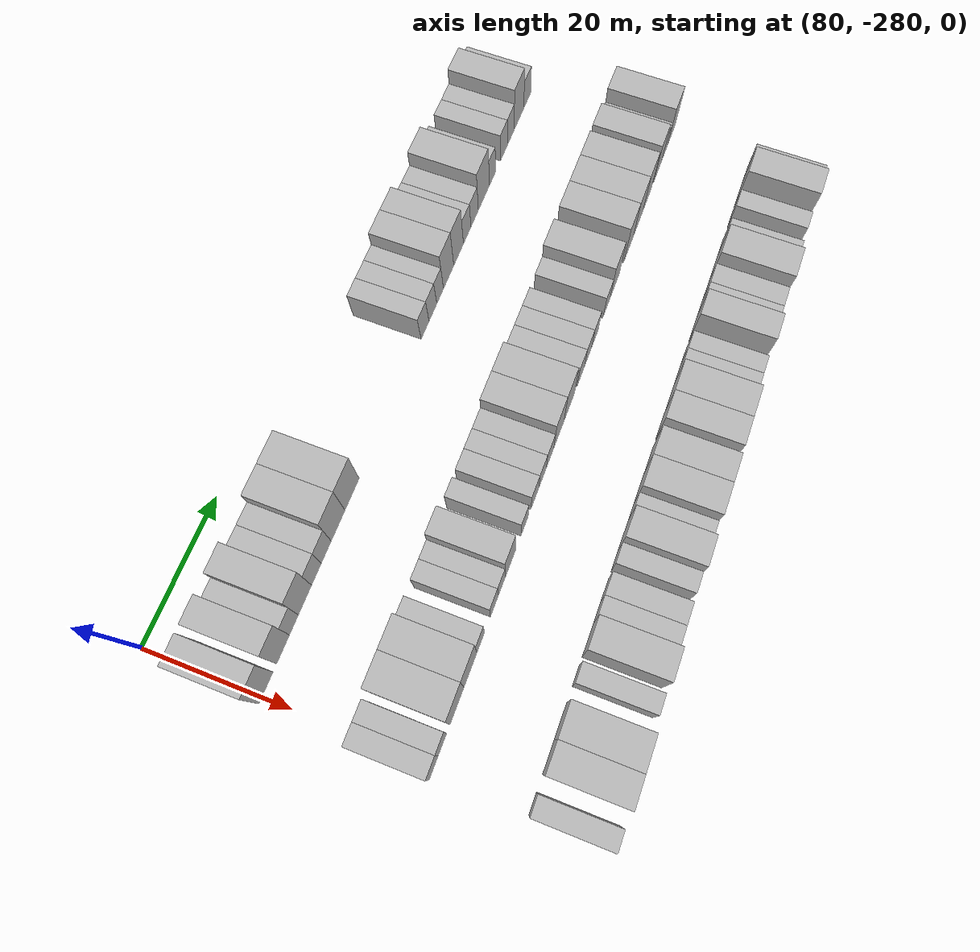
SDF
<sdf version="1.6">
 <world name="default">
  <model name="building_590">
   <static>1</static>
   <pose>91.0000 -278.8587 0 0.000000 0.000000 0.000000</pose>
   <link name="link">
    <pose>0 0 4.50 0 0 0</pose>
    <collision name="collision"><geometry><box><size>10.0000 3.8773 9.0000</size></box></geometry></collision>
    <visual name="visual">
     <cast_shadows>0</cast_shadows>
     <geometry><box><size>10.0000 3.8773 9.0000</size></box></geometry>
     <material>
      <script>
       <uri>model://HANNAS_wall/materials/scripts</uri>
       <uri>model://HANNAS_wall/materials/textures</uri>
       <name>vrc/HANNAS_wall</name>
      </script>
     </material>
    </visual>
   </link>
  </model>
  <model name="building_591">
   <static>1</static>
   <pose>91.0000 -274.1182 0 0.000000 0.000000 0.000000</pose>
   <link name="link">
    <pose>0 0 4.50 0 0 0</pose>
    <collision name="collision"><geometry><box><size>10.0000 3.6036 9.0000</size></box></geometry></collision>
    <visual name="visual">
     <cast_shadows>0</cast_shadows>
     <geometry><box><size>10.0000 3.6036 9.0000</size></box></geometry>
     <material>
      <script>
       <uri>model://HANNAS_wall/materials/scripts</uri>
       <uri>model://HANNAS_wall/materials/textures</uri>
       <name>vrc/HANNAS_wall</name>
      </script>
     </material>
    </visual>
   </link>
  </model>
  <model name="building_592">
   <static>1</static>
   <pose>91.0000 -271.0439 0 0.000000 0.000000 0.000000</pose>
   <link name="link">
    <pose>0 0 3.00 0 0 0</pose>
    <collision name="collision"><geometry><box><size>10.0000 2.5450 6.0000</size></box></geometry></collision>
    <visual name="visual">
     <cast_shadows>0</cast_shadows>
     <geometry><box><size>10.0000 2.5450 6.0000</size></box></geometry>
     <material>
      <script>
       <uri>model://HANNAS_wall/materials/scripts</uri>
       <uri>model://HANNAS_wall/materials/textures</uri>
       <name>vrc/HANNAS_wall</name>
      </script>
     </material>
    </visual>
   </link>
  </model>
  <model name="building_593">
   <static>1</static>
   <pose>91.0000 -267.8481 0 0.000000 0.000000 0.000000</pose>
   <link name="link">
    <pose>0 0 4.50 0 0 0</pose>
    <collision name="collision"><geometry><box><size>10.0000 3.8466 9.0000</size></box></geometry></collision>
    <visual name="visual">
     <cast_shadows>0</cast_shadows>
     <geometry><box><size>10.0000 3.8466 9.0000</size></box></geometry>
     <material>
      <script>
       <uri>model://HANNAS_wall/materials/scripts</uri>
       <uri>model://HANNAS_wall/materials/textures</uri>
       <name>vrc/HANNAS_wall</name>
      </script>
     </material>
    </visual>
   </link>
  </model>
  <model name="building_594">
   <static>1</static>
   <pose>91.0000 -264.4795 0 0.000000 0.000000 0.000000</pose>
   <link name="link">
    <pose>0 0 3.00 0 0 0</pose>
    <collision name="collision"><geometry><box><size>10.0000 2.8905 6.0000</size></box></geometry></collision>
    <visual name="visual">
     <cast_shadows>0</cast_shadows>
     <geometry><box><size>10.0000 2.8905 6.0000</size></box></geometry>
     <material>
      <script>
       <uri>model://HANNAS_wall/materials/scripts</uri>
       <uri>model://HANNAS_wall/materials/textures</uri>
       <name>vrc/HANNAS_wall</name>
      </script>
     </material>
    </visual>
   </link>
  </model>
  <model name="building_595">
   <static>1</static>
   <pose>91.0000 -261.5439 0 0.000000 0.000000 0.000000</pose>
   <link name="link">
    <pose>0 0 3.00 0 0 0</pose>
    <collision name="collision"><geometry><box><size>10.0000 2.9808 6.0000</size></box></geometry></collision>
    <visual name="visual">
     <cast_shadows>0</cast_shadows>
     <geometry><box><size>10.0000 2.9808 6.0000</size></box></geometry>
     <material>
      <script>
       <uri>model://HANNAS_wall/materials/scripts</uri>
       <uri>model://HANNAS_wall/materials/textures</uri>
       <name>vrc/HANNAS_wall</name>
      </script>
     </material>
    </visual>
   </link>
  </model>
  <model name="building_596">
   <static>1</static>
   <pose>91.0000 -257.9385 0 0.000000 0.000000 0.000000</pose>
   <link name="link">
    <pose>0 0 4.50 0 0 0</pose>
    <collision name="collision"><geometry><box><size>10.0000 4.2299 9.0000</size></box></geometry></collision>
    <visual name="visual">
     <cast_shadows>0</cast_shadows>
     <geometry><box><size>10.0000 4.2299 9.0000</size></box></geometry>
     <material>
      <script>
       <uri>model://HANNAS_wall/materials/scripts</uri>
       <uri>model://HANNAS_wall/materials/textures</uri>
       <name>vrc/HANNAS_wall</name>
      </script>
     </material>
    </visual>
   </link>
  </model>
  <model name="building_597">
   <static>1</static>
   <pose>91.0000 -253.6007 0 0.000000 0.000000 0.000000</pose>
   <link name="link">
    <pose>0 0 4.50 0 0 0</pose>
    <collision name="collision"><geometry><box><size>10.0000 4.4457 9.0000</size></box></geometry></collision>
    <visual name="visual">
     <cast_shadows>0</cast_shadows>
     <geometry><box><size>10.0000 4.4457 9.0000</size></box></geometry>
     <material>
      <script>
       <uri>model://HANNAS_wall/materials/scripts</uri>
       <uri>model://HANNAS_wall/materials/textures</uri>
       <name>vrc/HANNAS_wall</name>
      </script>
     </material>
    </visual>
   </link>
  </model>
  <model name="building_598">
   <static>1</static>
   <pose>91.0000 -229.1411 0 0.000000 0.000000 0.000000</pose>
   <link name="link">
    <pose>0 0 3.00 0 0 0</pose>
    <collision name="collision"><geometry><box><size>10.0000 2.8245 6.0000</size></box></geometry></collision>
    <visual name="visual">
     <cast_shadows>0</cast_shadows>
     <geometry><box><size>10.0000 2.8245 6.0000</size></box></geometry>
     <material>
      <script>
       <uri>model://HANNAS_wall/materials/scripts</uri>
       <uri>model://HANNAS_wall/materials/textures</uri>
       <name>vrc/HANNAS_wall</name>
      </script>
     </material>
    </visual>
   </link>
  </model>
  <model name="building_599">
   <static>1</static>
   <pose>91.0000 -226.3242 0 0.000000 0.000000 0.000000</pose>
   <link name="link">
    <pose>0 0 3.00 0 0 0</pose>
    <collision name="collision"><geometry><box><size>10.0000 2.8092 6.0000</size></box></geometry></collision>
    <visual name="visual">
     <cast_shadows>0</cast_shadows>
     <geometry><box><size>10.0000 2.8092 6.0000</size></box></geometry>
     <material>
      <script>
       <uri>model://HANNAS_wall/materials/scripts</uri>
       <uri>model://HANNAS_wall/materials/textures</uri>
       <name>vrc/HANNAS_wall</name>
      </script>
     </material>
    </visual>
   </link>
  </model>
  <model name="building_600">
   <static>1</static>
   <pose>91.0000 -223.6831 0 0.000000 0.000000 0.000000</pose>
   <link name="link">
    <pose>0 0 3.00 0 0 0</pose>
    <collision name="collision"><geometry><box><size>10.0000 2.4732 6.0000</size></box></geometry></collision>
    <visual name="visual">
     <cast_shadows>0</cast_shadows>
     <geometry><box><size>10.0000 2.4732 6.0000</size></box></geometry>
     <material>
      <script>
       <uri>model://HANNAS_wall/materials/scripts</uri>
       <uri>model://HANNAS_wall/materials/textures</uri>
       <name>vrc/HANNAS_wall</name>
      </script>
     </material>
    </visual>
   </link>
  </model>
  <model name="building_601">
   <static>1</static>
   <pose>91.0000 -220.5354 0 0.000000 0.000000 0.000000</pose>
   <link name="link">
    <pose>0 0 4.50 0 0 0</pose>
    <collision name="collision"><geometry><box><size>10.0000 3.8220 9.0000</size></box></geometry></collision>
    <visual name="visual">
     <cast_shadows>0</cast_shadows>
     <geometry><box><size>10.0000 3.8220 9.0000</size></box></geometry>
     <material>
      <script>
       <uri>model://HANNAS_wall/materials/scripts</uri>
       <uri>model://HANNAS_wall/materials/textures</uri>
       <name>vrc/HANNAS_wall</name>
      </script>
     </material>
    </visual>
   </link>
  </model>
  <model name="building_602">
   <static>1</static>
   <pose>91.0000 -216.7881 0 0.000000 0.000000 0.000000</pose>
   <link name="link">
    <pose>0 0 4.50 0 0 0</pose>
    <collision name="collision"><geometry><box><size>10.0000 3.6726 9.0000</size></box></geometry></collision>
    <visual name="visual">
     <cast_shadows>0</cast_shadows>
     <geometry><box><size>10.0000 3.6726 9.0000</size></box></geometry>
     <material>
      <script>
       <uri>model://HANNAS_wall/materials/scripts</uri>
       <uri>model://HANNAS_wall/materials/textures</uri>
       <name>vrc/HANNAS_wall</name>
      </script>
     </material>
    </visual>
   </link>
  </model>
  <model name="building_603">
   <static>1</static>
   <pose>91.0000 -213.5188 0 0.000000 0.000000 0.000000</pose>
   <link name="link">
    <pose>0 0 3.00 0 0 0</pose>
    <collision name="collision"><geometry><box><size>10.0000 2.8660 6.0000</size></box></geometry></collision>
    <visual name="visual">
     <cast_shadows>0</cast_shadows>
     <geometry><box><size>10.0000 2.8660 6.0000</size></box></geometry>
     <material>
      <script>
       <uri>model://HANNAS_wall/materials/scripts</uri>
       <uri>model://HANNAS_wall/materials/textures</uri>
       <name>vrc/HANNAS_wall</name>
      </script>
     </material>
    </visual>
   </link>
  </model>
  <model name="building_604">
   <static>1</static>
   <pose>91.0000 -210.6311 0 0.000000 0.000000 0.000000</pose>
   <link name="link">
    <pose>0 0 3.00 0 0 0</pose>
    <collision name="collision"><geometry><box><size>10.0000 2.9096 6.0000</size></box></geometry></collision>
    <visual name="visual">
     <cast_shadows>0</cast_shadows>
     <geometry><box><size>10.0000 2.9096 6.0000</size></box></geometry>
     <material>
      <script>
       <uri>model://HANNAS_wall/materials/scripts</uri>
       <uri>model://HANNAS_wall/materials/textures</uri>
       <name>vrc/HANNAS_wall</name>
      </script>
     </material>
    </visual>
   </link>
  </model>
  <model name="building_605">
   <static>1</static>
   <pose>91.0000 -206.9677 0 0.000000 0.000000 0.000000</pose>
   <link name="link">
    <pose>0 0 4.50 0 0 0</pose>
    <collision name="collision"><geometry><box><size>10.0000 4.4172 9.0000</size></box></geometry></collision>
    <visual name="visual">
     <cast_shadows>0</cast_shadows>
     <geometry><box><size>10.0000 4.4172 9.0000</size></box></geometry>
     <material>
      <script>
       <uri>model://HANNAS_wall/materials/scripts</uri>
       <uri>model://HANNAS_wall/materials/textures</uri>
       <name>vrc/HANNAS_wall</name>
      </script>
     </material>
    </visual>
   </link>
  </model>
  <model name="building_606">
   <static>1</static>
   <pose>91.0000 -203.5074 0 0.000000 0.000000 0.000000</pose>
   <link name="link">
    <pose>0 0 3.00 0 0 0</pose>
    <collision name="collision"><geometry><box><size>10.0000 2.5034 6.0000</size></box></geometry></collision>
    <visual name="visual">
     <cast_shadows>0</cast_shadows>
     <geometry><box><size>10.0000 2.5034 6.0000</size></box></geometry>
     <material>
      <script>
       <uri>model://HANNAS_wall/materials/scripts</uri>
       <uri>model://HANNAS_wall/materials/textures</uri>
       <name>vrc/HANNAS_wall</name>
      </script>
     </material>
    </visual>
   </link>
  </model>
  <model name="building_607">
   <static>1</static>
   <pose>91.0000 -198.8383 0 0.000000 0.000000 0.000000</pose>
   <link name="link">
    <pose>0 0 3.00 0 0 0</pose>
    <collision name="collision"><geometry><box><size>10.0000 2.8349 6.0000</size></box></geometry></collision>
    <visual name="visual">
     <cast_shadows>0</cast_shadows>
     <geometry><box><size>10.0000 2.8349 6.0000</size></box></geometry>
     <material>
      <script>
       <uri>model://HANNAS_wall/materials/scripts</uri>
       <uri>model://HANNAS_wall/materials/textures</uri>
       <name>vrc/HANNAS_wall</name>
      </script>
     </material>
    </visual>
   </link>
  </model>
  <model name="building_608">
   <static>1</static>
   <pose>91.0000 -195.9769 0 0.000000 0.000000 0.000000</pose>
   <link name="link">
    <pose>0 0 3.00 0 0 0</pose>
    <collision name="collision"><geometry><box><size>10.0000 2.8878 6.0000</size></box></geometry></collision>
    <visual name="visual">
     <cast_shadows>0</cast_shadows>
     <geometry><box><size>10.0000 2.8878 6.0000</size></box></geometry>
     <material>
      <script>
       <uri>model://HANNAS_wall/materials/scripts</uri>
       <uri>model://HANNAS_wall/materials/textures</uri>
       <name>vrc/HANNAS_wall</name>
      </script>
     </material>
    </visual>
   </link>
  </model>
  <model name="building_609">
   <static>1</static>
   <pose>91.0000 -192.5050 0 0.000000 0.000000 0.000000</pose>
   <link name="link">
    <pose>0 0 4.50 0 0 0</pose>
    <collision name="collision"><geometry><box><size>10.0000 4.0559 9.0000</size></box></geometry></collision>
    <visual name="visual">
     <cast_shadows>0</cast_shadows>
     <geometry><box><size>10.0000 4.0559 9.0000</size></box></geometry>
     <material>
      <script>
       <uri>model://HANNAS_wall/materials/scripts</uri>
       <uri>model://HANNAS_wall/materials/textures</uri>
       <name>vrc/HANNAS_wall</name>
      </script>
     </material>
    </visual>
   </link>
  </model>
  <model name="building_610">
   <static>1</static>
   <pose>91.0000 -188.9962 0 0.000000 0.000000 0.000000</pose>
   <link name="link">
    <pose>0 0 3.00 0 0 0</pose>
    <collision name="collision"><geometry><box><size>10.0000 2.9617 6.0000</size></box></geometry></collision>
    <visual name="visual">
     <cast_shadows>0</cast_shadows>
     <geometry><box><size>10.0000 2.9617 6.0000</size></box></geometry>
     <material>
      <script>
       <uri>model://HANNAS_wall/materials/scripts</uri>
       <uri>model://HANNAS_wall/materials/textures</uri>
       <name>vrc/HANNAS_wall</name>
      </script>
     </material>
    </visual>
   </link>
  </model>
  <model name="building_770">
   <static>1</static>
   <pose>113.0000 -280.0379 0 0.000000 0.000000 0.000000</pose>
   <link name="link">
    <pose>0 0 3.00 0 0 0</pose>
    <collision name="collision"><geometry><box><size>10.0000 2.7890 6.0000</size></box></geometry></collision>
    <visual name="visual">
     <cast_shadows>0</cast_shadows>
     <geometry><box><size>10.0000 2.7890 6.0000</size></box></geometry>
     <material>
      <script>
       <uri>model://HANNAS_wall/materials/scripts</uri>
       <uri>model://HANNAS_wall/materials/textures</uri>
       <name>vrc/HANNAS_wall</name>
      </script>
     </material>
    </visual>
   </link>
  </model>
  <model name="building_771">
   <static>1</static>
   <pose>113.0000 -277.3357 0 0.000000 0.000000 0.000000</pose>
   <link name="link">
    <pose>0 0 3.00 0 0 0</pose>
    <collision name="collision"><geometry><box><size>10.0000 2.6154 6.0000</size></box></geometry></collision>
    <visual name="visual">
     <cast_shadows>0</cast_shadows>
     <geometry><box><size>10.0000 2.6154 6.0000</size></box></geometry>
     <material>
      <script>
       <uri>model://HANNAS_wall/materials/scripts</uri>
       <uri>model://HANNAS_wall/materials/textures</uri>
       <name>vrc/HANNAS_wall</name>
      </script>
     </material>
    </visual>
   </link>
  </model>
  <model name="building_772">
   <static>1</static>
   <pose>113.0000 -272.7971 0 0.000000 0.000000 0.000000</pose>
   <link name="link">
    <pose>0 0 4.50 0 0 0</pose>
    <collision name="collision"><geometry><box><size>10.0000 4.4618 9.0000</size></box></geometry></collision>
    <visual name="visual">
     <cast_shadows>0</cast_shadows>
     <geometry><box><size>10.0000 4.4618 9.0000</size></box></geometry>
     <material>
      <script>
       <uri>model://HANNAS_wall/materials/scripts</uri>
       <uri>model://HANNAS_wall/materials/textures</uri>
       <name>vrc/HANNAS_wall</name>
      </script>
     </material>
    </visual>
   </link>
  </model>
  <model name="building_773">
   <static>1</static>
   <pose>113.0000 -268.4406 0 0.000000 0.000000 0.000000</pose>
   <link name="link">
    <pose>0 0 4.50 0 0 0</pose>
    <collision name="collision"><geometry><box><size>10.0000 4.2511 9.0000</size></box></geometry></collision>
    <visual name="visual">
     <cast_shadows>0</cast_shadows>
     <geometry><box><size>10.0000 4.2511 9.0000</size></box></geometry>
     <material>
      <script>
       <uri>model://HANNAS_wall/materials/scripts</uri>
       <uri>model://HANNAS_wall/materials/textures</uri>
       <name>vrc/HANNAS_wall</name>
      </script>
     </material>
    </visual>
   </link>
  </model>
  <model name="building_774">
   <static>1</static>
   <pose>113.0000 -265.0373 0 0.000000 0.000000 0.000000</pose>
   <link name="link">
    <pose>0 0 3.00 0 0 0</pose>
    <collision name="collision"><geometry><box><size>10.0000 2.5555 6.0000</size></box></geometry></collision>
    <visual name="visual">
     <cast_shadows>0</cast_shadows>
     <geometry><box><size>10.0000 2.5555 6.0000</size></box></geometry>
     <material>
      <script>
       <uri>model://HANNAS_wall/materials/scripts</uri>
       <uri>model://HANNAS_wall/materials/textures</uri>
       <name>vrc/HANNAS_wall</name>
      </script>
     </material>
    </visual>
   </link>
  </model>
  <model name="building_775">
   <static>1</static>
   <pose>113.0000 -260.4485 0 0.000000 0.000000 0.000000</pose>
   <link name="link">
    <pose>0 0 3.00 0 0 0</pose>
    <collision name="collision"><geometry><box><size>10.0000 2.6222 6.0000</size></box></geometry></collision>
    <visual name="visual">
     <cast_shadows>0</cast_shadows>
     <geometry><box><size>10.0000 2.6222 6.0000</size></box></geometry>
     <material>
      <script>
       <uri>model://HANNAS_wall/materials/scripts</uri>
       <uri>model://HANNAS_wall/materials/textures</uri>
       <name>vrc/HANNAS_wall</name>
      </script>
     </material>
    </visual>
   </link>
  </model>
  <model name="building_776">
   <static>1</static>
   <pose>113.0000 -257.9101 0 0.000000 0.000000 0.000000</pose>
   <link name="link">
    <pose>0 0 3.00 0 0 0</pose>
    <collision name="collision"><geometry><box><size>10.0000 2.4545 6.0000</size></box></geometry></collision>
    <visual name="visual">
     <cast_shadows>0</cast_shadows>
     <geometry><box><size>10.0000 2.4545 6.0000</size></box></geometry>
     <material>
      <script>
       <uri>model://HANNAS_wall/materials/scripts</uri>
       <uri>model://HANNAS_wall/materials/textures</uri>
       <name>vrc/HANNAS_wall</name>
      </script>
     </material>
    </visual>
   </link>
  </model>
  <model name="building_777">
   <static>1</static>
   <pose>113.0000 -254.8789 0 0.000000 0.000000 0.000000</pose>
   <link name="link">
    <pose>0 0 4.50 0 0 0</pose>
    <collision name="collision"><geometry><box><size>10.0000 3.6080 9.0000</size></box></geometry></collision>
    <visual name="visual">
     <cast_shadows>0</cast_shadows>
     <geometry><box><size>10.0000 3.6080 9.0000</size></box></geometry>
     <material>
      <script>
       <uri>model://HANNAS_wall/materials/scripts</uri>
       <uri>model://HANNAS_wall/materials/textures</uri>
       <name>vrc/HANNAS_wall</name>
      </script>
     </material>
    </visual>
   </link>
  </model>
  <model name="building_778">
   <static>1</static>
   <pose>113.0000 -249.7769 0 0.000000 0.000000 0.000000</pose>
   <link name="link">
    <pose>0 0 3.00 0 0 0</pose>
    <collision name="collision"><geometry><box><size>10.0000 2.5960 6.0000</size></box></geometry></collision>
    <visual name="visual">
     <cast_shadows>0</cast_shadows>
     <geometry><box><size>10.0000 2.5960 6.0000</size></box></geometry>
     <material>
      <script>
       <uri>model://HANNAS_wall/materials/scripts</uri>
       <uri>model://HANNAS_wall/materials/textures</uri>
       <name>vrc/HANNAS_wall</name>
      </script>
     </material>
    </visual>
   </link>
  </model>
  <model name="building_779">
   <static>1</static>
   <pose>113.0000 -246.0148 0 0.000000 0.000000 0.000000</pose>
   <link name="link">
    <pose>0 0 3.00 0 0 0</pose>
    <collision name="collision"><geometry><box><size>10.0000 2.9283 6.0000</size></box></geometry></collision>
    <visual name="visual">
     <cast_shadows>0</cast_shadows>
     <geometry><box><size>10.0000 2.9283 6.0000</size></box></geometry>
     <material>
      <script>
       <uri>model://HANNAS_wall/materials/scripts</uri>
       <uri>model://HANNAS_wall/materials/textures</uri>
       <name>vrc/HANNAS_wall</name>
      </script>
     </material>
    </visual>
   </link>
  </model>
  <model name="building_780">
   <static>1</static>
   <pose>113.0000 -243.1566 0 0.000000 0.000000 0.000000</pose>
   <link name="link">
    <pose>0 0 3.00 0 0 0</pose>
    <collision name="collision"><geometry><box><size>10.0000 2.7880 6.0000</size></box></geometry></collision>
    <visual name="visual">
     <cast_shadows>0</cast_shadows>
     <geometry><box><size>10.0000 2.7880 6.0000</size></box></geometry>
     <material>
      <script>
       <uri>model://HANNAS_wall/materials/scripts</uri>
       <uri>model://HANNAS_wall/materials/textures</uri>
       <name>vrc/HANNAS_wall</name>
      </script>
     </material>
    </visual>
   </link>
  </model>
  <model name="building_781">
   <static>1</static>
   <pose>113.0000 -240.3220 0 0.000000 0.000000 0.000000</pose>
   <link name="link">
    <pose>0 0 3.00 0 0 0</pose>
    <collision name="collision"><geometry><box><size>10.0000 2.8814 6.0000</size></box></geometry></collision>
    <visual name="visual">
     <cast_shadows>0</cast_shadows>
     <geometry><box><size>10.0000 2.8814 6.0000</size></box></geometry>
     <material>
      <script>
       <uri>model://HANNAS_wall/materials/scripts</uri>
       <uri>model://HANNAS_wall/materials/textures</uri>
       <name>vrc/HANNAS_wall</name>
      </script>
     </material>
    </visual>
   </link>
  </model>
  <model name="building_782">
   <static>1</static>
   <pose>113.0000 -236.8586 0 0.000000 0.000000 0.000000</pose>
   <link name="link">
    <pose>0 0 4.50 0 0 0</pose>
    <collision name="collision"><geometry><box><size>10.0000 4.0453 9.0000</size></box></geometry></collision>
    <visual name="visual">
     <cast_shadows>0</cast_shadows>
     <geometry><box><size>10.0000 4.0453 9.0000</size></box></geometry>
     <material>
      <script>
       <uri>model://HANNAS_wall/materials/scripts</uri>
       <uri>model://HANNAS_wall/materials/textures</uri>
       <name>vrc/HANNAS_wall</name>
      </script>
     </material>
    </visual>
   </link>
  </model>
  <model name="building_783">
   <static>1</static>
   <pose>113.0000 -232.7598 0 0.000000 0.000000 0.000000</pose>
   <link name="link">
    <pose>0 0 4.50 0 0 0</pose>
    <collision name="collision"><geometry><box><size>10.0000 4.1523 9.0000</size></box></geometry></collision>
    <visual name="visual">
     <cast_shadows>0</cast_shadows>
     <geometry><box><size>10.0000 4.1523 9.0000</size></box></geometry>
     <material>
      <script>
       <uri>model://HANNAS_wall/materials/scripts</uri>
       <uri>model://HANNAS_wall/materials/textures</uri>
       <name>vrc/HANNAS_wall</name>
      </script>
     </material>
    </visual>
   </link>
  </model>
  <model name="building_784">
   <static>1</static>
   <pose>113.0000 -228.1839 0 0.000000 0.000000 0.000000</pose>
   <link name="link">
    <pose>0 0 3.00 0 0 0</pose>
    <collision name="collision"><geometry><box><size>10.0000 2.9995 6.0000</size></box></geometry></collision>
    <visual name="visual">
     <cast_shadows>0</cast_shadows>
     <geometry><box><size>10.0000 2.9995 6.0000</size></box></geometry>
     <material>
      <script>
       <uri>model://HANNAS_wall/materials/scripts</uri>
       <uri>model://HANNAS_wall/materials/textures</uri>
       <name>vrc/HANNAS_wall</name>
      </script>
     </material>
    </visual>
   </link>
  </model>
  <model name="building_785">
   <static>1</static>
   <pose>113.0000 -225.2134 0 0.000000 0.000000 0.000000</pose>
   <link name="link">
    <pose>0 0 3.00 0 0 0</pose>
    <collision name="collision"><geometry><box><size>10.0000 2.9416 6.0000</size></box></geometry></collision>
    <visual name="visual">
     <cast_shadows>0</cast_shadows>
     <geometry><box><size>10.0000 2.9416 6.0000</size></box></geometry>
     <material>
      <script>
       <uri>model://HANNAS_wall/materials/scripts</uri>
       <uri>model://HANNAS_wall/materials/textures</uri>
       <name>vrc/HANNAS_wall</name>
      </script>
     </material>
    </visual>
   </link>
  </model>
  <model name="building_786">
   <static>1</static>
   <pose>113.0000 -222.3449 0 0.000000 0.000000 0.000000</pose>
   <link name="link">
    <pose>0 0 3.00 0 0 0</pose>
    <collision name="collision"><geometry><box><size>10.0000 2.7954 6.0000</size></box></geometry></collision>
    <visual name="visual">
     <cast_shadows>0</cast_shadows>
     <geometry><box><size>10.0000 2.7954 6.0000</size></box></geometry>
     <material>
      <script>
       <uri>model://HANNAS_wall/materials/scripts</uri>
       <uri>model://HANNAS_wall/materials/textures</uri>
       <name>vrc/HANNAS_wall</name>
      </script>
     </material>
    </visual>
   </link>
  </model>
  <model name="building_787">
   <static>1</static>
   <pose>113.0000 -217.4885 0 0.000000 0.000000 0.000000</pose>
   <link name="link">
    <pose>0 0 3.00 0 0 0</pose>
    <collision name="collision"><geometry><box><size>10.0000 2.9175 6.0000</size></box></geometry></collision>
    <visual name="visual">
     <cast_shadows>0</cast_shadows>
     <geometry><box><size>10.0000 2.9175 6.0000</size></box></geometry>
     <material>
      <script>
       <uri>model://HANNAS_wall/materials/scripts</uri>
       <uri>model://HANNAS_wall/materials/textures</uri>
       <name>vrc/HANNAS_wall</name>
      </script>
     </material>
    </visual>
   </link>
  </model>
  <model name="building_788">
   <static>1</static>
   <pose>113.0000 -213.9313 0 0.000000 0.000000 0.000000</pose>
   <link name="link">
    <pose>0 0 4.50 0 0 0</pose>
    <collision name="collision"><geometry><box><size>10.0000 4.1969 9.0000</size></box></geometry></collision>
    <visual name="visual">
     <cast_shadows>0</cast_shadows>
     <geometry><box><size>10.0000 4.1969 9.0000</size></box></geometry>
     <material>
      <script>
       <uri>model://HANNAS_wall/materials/scripts</uri>
       <uri>model://HANNAS_wall/materials/textures</uri>
       <name>vrc/HANNAS_wall</name>
      </script>
     </material>
    </visual>
   </link>
  </model>
  <model name="building_789">
   <static>1</static>
   <pose>113.0000 -207.7079 0 0.000000 0.000000 0.000000</pose>
   <link name="link">
    <pose>0 0 4.50 0 0 0</pose>
    <collision name="collision"><geometry><box><size>10.0000 4.2498 9.0000</size></box></geometry></collision>
    <visual name="visual">
     <cast_shadows>0</cast_shadows>
     <geometry><box><size>10.0000 4.2498 9.0000</size></box></geometry>
     <material>
      <script>
       <uri>model://HANNAS_wall/materials/scripts</uri>
       <uri>model://HANNAS_wall/materials/textures</uri>
       <name>vrc/HANNAS_wall</name>
      </script>
     </material>
    </visual>
   </link>
  </model>
  <model name="building_790">
   <static>1</static>
   <pose>113.0000 -203.3951 0 0.000000 0.000000 0.000000</pose>
   <link name="link">
    <pose>0 0 4.50 0 0 0</pose>
    <collision name="collision"><geometry><box><size>10.0000 4.3760 9.0000</size></box></geometry></collision>
    <visual name="visual">
     <cast_shadows>0</cast_shadows>
     <geometry><box><size>10.0000 4.3760 9.0000</size></box></geometry>
     <material>
      <script>
       <uri>model://HANNAS_wall/materials/scripts</uri>
       <uri>model://HANNAS_wall/materials/textures</uri>
       <name>vrc/HANNAS_wall</name>
      </script>
     </material>
    </visual>
   </link>
  </model>
  <model name="building_791">
   <static>1</static>
   <pose>113.0000 -199.1546 0 0.000000 0.000000 0.000000</pose>
   <link name="link">
    <pose>0 0 4.50 0 0 0</pose>
    <collision name="collision"><geometry><box><size>10.0000 4.1050 9.0000</size></box></geometry></collision>
    <visual name="visual">
     <cast_shadows>0</cast_shadows>
     <geometry><box><size>10.0000 4.1050 9.0000</size></box></geometry>
     <material>
      <script>
       <uri>model://HANNAS_wall/materials/scripts</uri>
       <uri>model://HANNAS_wall/materials/textures</uri>
       <name>vrc/HANNAS_wall</name>
      </script>
     </material>
    </visual>
   </link>
  </model>
  <model name="building_792">
   <static>1</static>
   <pose>113.0000 -194.1905 0 0.000000 0.000000 0.000000</pose>
   <link name="link">
    <pose>0 0 4.50 0 0 0</pose>
    <collision name="collision"><geometry><box><size>10.0000 3.8232 9.0000</size></box></geometry></collision>
    <visual name="visual">
     <cast_shadows>0</cast_shadows>
     <geometry><box><size>10.0000 3.8232 9.0000</size></box></geometry>
     <material>
      <script>
       <uri>model://HANNAS_wall/materials/scripts</uri>
       <uri>model://HANNAS_wall/materials/textures</uri>
       <name>vrc/HANNAS_wall</name>
      </script>
     </material>
    </visual>
   </link>
  </model>
  <model name="building_793">
   <static>1</static>
   <pose>113.0000 -190.9607 0 0.000000 0.000000 0.000000</pose>
   <link name="link">
    <pose>0 0 3.00 0 0 0</pose>
    <collision name="collision"><geometry><box><size>10.0000 2.6363 6.0000</size></box></geometry></collision>
    <visual name="visual">
     <cast_shadows>0</cast_shadows>
     <geometry><box><size>10.0000 2.6363 6.0000</size></box></geometry>
     <material>
      <script>
       <uri>model://HANNAS_wall/materials/scripts</uri>
       <uri>model://HANNAS_wall/materials/textures</uri>
       <name>vrc/HANNAS_wall</name>
      </script>
     </material>
    </visual>
   </link>
  </model>
  <model name="building_794">
   <static>1</static>
   <pose>113.0000 -187.6066 0 0.000000 0.000000 0.000000</pose>
   <link name="link">
    <pose>0 0 4.50 0 0 0</pose>
    <collision name="collision"><geometry><box><size>10.0000 4.0720 9.0000</size></box></geometry></collision>
    <visual name="visual">
     <cast_shadows>0</cast_shadows>
     <geometry><box><size>10.0000 4.0720 9.0000</size></box></geometry>
     <material>
      <script>
       <uri>model://HANNAS_wall/materials/scripts</uri>
       <uri>model://HANNAS_wall/materials/textures</uri>
       <name>vrc/HANNAS_wall</name>
      </script>
     </material>
    </visual>
   </link>
  </model>
  <model name="building_958">
   <static>1</static>
   <pose>135.0000 -279.6047 0 0.000000 0.000000 0.000000</pose>
   <link name="link">
    <pose>0 0 3.00 0 0 0</pose>
    <collision name="collision"><geometry><box><size>10.0000 2.5954 6.0000</size></box></geometry></collision>
    <visual name="visual">
     <cast_shadows>0</cast_shadows>
     <geometry><box><size>10.0000 2.5954 6.0000</size></box></geometry>
     <material>
      <script>
       <uri>model://HANNAS_wall/materials/scripts</uri>
       <uri>model://HANNAS_wall/materials/textures</uri>
       <name>vrc/HANNAS_wall</name>
      </script>
     </material>
    </visual>
   </link>
  </model>
  <model name="building_959">
   <static>1</static>
   <pose>135.0000 -274.3266 0 0.000000 0.000000 0.000000</pose>
   <link name="link">
    <pose>0 0 4.50 0 0 0</pose>
    <collision name="collision"><geometry><box><size>10.0000 3.9609 9.0000</size></box></geometry></collision>
    <visual name="visual">
     <cast_shadows>0</cast_shadows>
     <geometry><box><size>10.0000 3.9609 9.0000</size></box></geometry>
     <material>
      <script>
       <uri>model://HANNAS_wall/materials/scripts</uri>
       <uri>model://HANNAS_wall/materials/textures</uri>
       <name>vrc/HANNAS_wall</name>
      </script>
     </material>
    </visual>
   </link>
  </model>
  <model name="building_960">
   <static>1</static>
   <pose>135.0000 -270.1365 0 0.000000 0.000000 0.000000</pose>
   <link name="link">
    <pose>0 0 4.50 0 0 0</pose>
    <collision name="collision"><geometry><box><size>10.0000 4.4193 9.0000</size></box></geometry></collision>
    <visual name="visual">
     <cast_shadows>0</cast_shadows>
     <geometry><box><size>10.0000 4.4193 9.0000</size></box></geometry>
     <material>
      <script>
       <uri>model://HANNAS_wall/materials/scripts</uri>
       <uri>model://HANNAS_wall/materials/textures</uri>
       <name>vrc/HANNAS_wall</name>
      </script>
     </material>
    </visual>
   </link>
  </model>
  <model name="building_961">
   <static>1</static>
   <pose>135.0000 -264.6341 0 0.000000 0.000000 0.000000</pose>
   <link name="link">
    <pose>0 0 3.00 0 0 0</pose>
    <collision name="collision"><geometry><box><size>10.0000 2.5855 6.0000</size></box></geometry></collision>
    <visual name="visual">
     <cast_shadows>0</cast_shadows>
     <geometry><box><size>10.0000 2.5855 6.0000</size></box></geometry>
     <material>
      <script>
       <uri>model://HANNAS_wall/materials/scripts</uri>
       <uri>model://HANNAS_wall/materials/textures</uri>
       <name>vrc/HANNAS_wall</name>
      </script>
     </material>
    </visual>
   </link>
  </model>
  <model name="building_962">
   <static>1</static>
   <pose>135.0000 -260.2690 0 0.000000 0.000000 0.000000</pose>
   <link name="link">
    <pose>0 0 4.50 0 0 0</pose>
    <collision name="collision"><geometry><box><size>10.0000 4.1448 9.0000</size></box></geometry></collision>
    <visual name="visual">
     <cast_shadows>0</cast_shadows>
     <geometry><box><size>10.0000 4.1448 9.0000</size></box></geometry>
     <material>
      <script>
       <uri>model://HANNAS_wall/materials/scripts</uri>
       <uri>model://HANNAS_wall/materials/textures</uri>
       <name>vrc/HANNAS_wall</name>
      </script>
     </material>
    </visual>
   </link>
  </model>
  <model name="building_963">
   <static>1</static>
   <pose>135.0000 -256.7822 0 0.000000 0.000000 0.000000</pose>
   <link name="link">
    <pose>0 0 3.00 0 0 0</pose>
    <collision name="collision"><geometry><box><size>10.0000 2.8286 6.0000</size></box></geometry></collision>
    <visual name="visual">
     <cast_shadows>0</cast_shadows>
     <geometry><box><size>10.0000 2.8286 6.0000</size></box></geometry>
     <material>
      <script>
       <uri>model://HANNAS_wall/materials/scripts</uri>
       <uri>model://HANNAS_wall/materials/textures</uri>
       <name>vrc/HANNAS_wall</name>
      </script>
     </material>
    </visual>
   </link>
  </model>
  <model name="building_964">
   <static>1</static>
   <pose>135.0000 -253.9032 0 0.000000 0.000000 0.000000</pose>
   <link name="link">
    <pose>0 0 3.00 0 0 0</pose>
    <collision name="collision"><geometry><box><size>10.0000 2.9295 6.0000</size></box></geometry></collision>
    <visual name="visual">
     <cast_shadows>0</cast_shadows>
     <geometry><box><size>10.0000 2.9295 6.0000</size></box></geometry>
     <material>
      <script>
       <uri>model://HANNAS_wall/materials/scripts</uri>
       <uri>model://HANNAS_wall/materials/textures</uri>
       <name>vrc/HANNAS_wall</name>
      </script>
     </material>
    </visual>
   </link>
  </model>
  <model name="building_965">
   <static>1</static>
   <pose>135.0000 -250.0821 0 0.000000 0.000000 0.000000</pose>
   <link name="link">
    <pose>0 0 3.00 0 0 0</pose>
    <collision name="collision"><geometry><box><size>10.0000 2.7128 6.0000</size></box></geometry></collision>
    <visual name="visual">
     <cast_shadows>0</cast_shadows>
     <geometry><box><size>10.0000 2.7128 6.0000</size></box></geometry>
     <material>
      <script>
       <uri>model://HANNAS_wall/materials/scripts</uri>
       <uri>model://HANNAS_wall/materials/textures</uri>
       <name>vrc/HANNAS_wall</name>
      </script>
     </material>
    </visual>
   </link>
  </model>
  <model name="building_966">
   <static>1</static>
   <pose>135.0000 -246.7085 0 0.000000 0.000000 0.000000</pose>
   <link name="link">
    <pose>0 0 4.50 0 0 0</pose>
    <collision name="collision"><geometry><box><size>10.0000 4.0343 9.0000</size></box></geometry></collision>
    <visual name="visual">
     <cast_shadows>0</cast_shadows>
     <geometry><box><size>10.0000 4.0343 9.0000</size></box></geometry>
     <material>
      <script>
       <uri>model://HANNAS_wall/materials/scripts</uri>
       <uri>model://HANNAS_wall/materials/textures</uri>
       <name>vrc/HANNAS_wall</name>
      </script>
     </material>
    </visual>
   </link>
  </model>
  <model name="building_967">
   <static>1</static>
   <pose>135.0000 -243.4472 0 0.000000 0.000000 0.000000</pose>
   <link name="link">
    <pose>0 0 3.00 0 0 0</pose>
    <collision name="collision"><geometry><box><size>10.0000 2.4882 6.0000</size></box></geometry></collision>
    <visual name="visual">
     <cast_shadows>0</cast_shadows>
     <geometry><box><size>10.0000 2.4882 6.0000</size></box></geometry>
     <material>
      <script>
       <uri>model://HANNAS_wall/materials/scripts</uri>
       <uri>model://HANNAS_wall/materials/textures</uri>
       <name>vrc/HANNAS_wall</name>
      </script>
     </material>
    </visual>
   </link>
  </model>
  <model name="building_968">
   <static>1</static>
   <pose>135.0000 -240.1016 0 0.000000 0.000000 0.000000</pose>
   <link name="link">
    <pose>0 0 4.50 0 0 0</pose>
    <collision name="collision"><geometry><box><size>10.0000 4.2031 9.0000</size></box></geometry></collision>
    <visual name="visual">
     <cast_shadows>0</cast_shadows>
     <geometry><box><size>10.0000 4.2031 9.0000</size></box></geometry>
     <material>
      <script>
       <uri>model://HANNAS_wall/materials/scripts</uri>
       <uri>model://HANNAS_wall/materials/textures</uri>
       <name>vrc/HANNAS_wall</name>
      </script>
     </material>
    </visual>
   </link>
  </model>
  <model name="building_969">
   <static>1</static>
   <pose>135.0000 -236.0597 0 0.000000 0.000000 0.000000</pose>
   <link name="link">
    <pose>0 0 4.50 0 0 0</pose>
    <collision name="collision"><geometry><box><size>10.0000 3.8806 9.0000</size></box></geometry></collision>
    <visual name="visual">
     <cast_shadows>0</cast_shadows>
     <geometry><box><size>10.0000 3.8806 9.0000</size></box></geometry>
     <material>
      <script>
       <uri>model://HANNAS_wall/materials/scripts</uri>
       <uri>model://HANNAS_wall/materials/textures</uri>
       <name>vrc/HANNAS_wall</name>
      </script>
     </material>
    </visual>
   </link>
  </model>
  <model name="building_970">
   <static>1</static>
   <pose>135.0000 -231.1594 0 0.000000 0.000000 0.000000</pose>
   <link name="link">
    <pose>0 0 4.50 0 0 0</pose>
    <collision name="collision"><geometry><box><size>10.0000 3.9200 9.0000</size></box></geometry></collision>
    <visual name="visual">
     <cast_shadows>0</cast_shadows>
     <geometry><box><size>10.0000 3.9200 9.0000</size></box></geometry>
     <material>
      <script>
       <uri>model://HANNAS_wall/materials/scripts</uri>
       <uri>model://HANNAS_wall/materials/textures</uri>
       <name>vrc/HANNAS_wall</name>
      </script>
     </material>
    </visual>
   </link>
  </model>
  <model name="building_971">
   <static>1</static>
   <pose>135.0000 -227.0196 0 0.000000 0.000000 0.000000</pose>
   <link name="link">
    <pose>0 0 4.50 0 0 0</pose>
    <collision name="collision"><geometry><box><size>10.0000 4.3596 9.0000</size></box></geometry></collision>
    <visual name="visual">
     <cast_shadows>0</cast_shadows>
     <geometry><box><size>10.0000 4.3596 9.0000</size></box></geometry>
     <material>
      <script>
       <uri>model://HANNAS_wall/materials/scripts</uri>
       <uri>model://HANNAS_wall/materials/textures</uri>
       <name>vrc/HANNAS_wall</name>
      </script>
     </material>
    </visual>
   </link>
  </model>
  <model name="building_972">
   <static>1</static>
   <pose>135.0000 -223.3559 0 0.000000 0.000000 0.000000</pose>
   <link name="link">
    <pose>0 0 3.00 0 0 0</pose>
    <collision name="collision"><geometry><box><size>10.0000 2.9679 6.0000</size></box></geometry></collision>
    <visual name="visual">
     <cast_shadows>0</cast_shadows>
     <geometry><box><size>10.0000 2.9679 6.0000</size></box></geometry>
     <material>
      <script>
       <uri>model://HANNAS_wall/materials/scripts</uri>
       <uri>model://HANNAS_wall/materials/textures</uri>
       <name>vrc/HANNAS_wall</name>
      </script>
     </material>
    </visual>
   </link>
  </model>
  <model name="building_973">
   <static>1</static>
   <pose>135.0000 -220.5770 0 0.000000 0.000000 0.000000</pose>
   <link name="link">
    <pose>0 0 3.00 0 0 0</pose>
    <collision name="collision"><geometry><box><size>10.0000 2.5899 6.0000</size></box></geometry></collision>
    <visual name="visual">
     <cast_shadows>0</cast_shadows>
     <geometry><box><size>10.0000 2.5899 6.0000</size></box></geometry>
     <material>
      <script>
       <uri>model://HANNAS_wall/materials/scripts</uri>
       <uri>model://HANNAS_wall/materials/textures</uri>
       <name>vrc/HANNAS_wall</name>
      </script>
     </material>
    </visual>
   </link>
  </model>
  <model name="building_974">
   <static>1</static>
   <pose>135.0000 -216.3856 0 0.000000 0.000000 0.000000</pose>
   <link name="link">
    <pose>0 0 4.50 0 0 0</pose>
    <collision name="collision"><geometry><box><size>10.0000 3.7929 9.0000</size></box></geometry></collision>
    <visual name="visual">
     <cast_shadows>0</cast_shadows>
     <geometry><box><size>10.0000 3.7929 9.0000</size></box></geometry>
     <material>
      <script>
       <uri>model://HANNAS_wall/materials/scripts</uri>
       <uri>model://HANNAS_wall/materials/textures</uri>
       <name>vrc/HANNAS_wall</name>
      </script>
     </material>
    </visual>
   </link>
  </model>
  <model name="building_975">
   <static>1</static>
   <pose>135.0000 -213.1377 0 0.000000 0.000000 0.000000</pose>
   <link name="link">
    <pose>0 0 3.00 0 0 0</pose>
    <collision name="collision"><geometry><box><size>10.0000 2.7028 6.0000</size></box></geometry></collision>
    <visual name="visual">
     <cast_shadows>0</cast_shadows>
     <geometry><box><size>10.0000 2.7028 6.0000</size></box></geometry>
     <material>
      <script>
       <uri>model://HANNAS_wall/materials/scripts</uri>
       <uri>model://HANNAS_wall/materials/textures</uri>
       <name>vrc/HANNAS_wall</name>
      </script>
     </material>
    </visual>
   </link>
  </model>
  <model name="building_976">
   <static>1</static>
   <pose>135.0000 -210.3400 0 0.000000 0.000000 0.000000</pose>
   <link name="link">
    <pose>0 0 3.00 0 0 0</pose>
    <collision name="collision"><geometry><box><size>10.0000 2.8927 6.0000</size></box></geometry></collision>
    <visual name="visual">
     <cast_shadows>0</cast_shadows>
     <geometry><box><size>10.0000 2.8927 6.0000</size></box></geometry>
     <material>
      <script>
       <uri>model://HANNAS_wall/materials/scripts</uri>
       <uri>model://HANNAS_wall/materials/textures</uri>
       <name>vrc/HANNAS_wall</name>
      </script>
     </material>
    </visual>
   </link>
  </model>
  <model name="building_977">
   <static>1</static>
   <pose>135.0000 -206.6599 0 0.000000 0.000000 0.000000</pose>
   <link name="link">
    <pose>0 0 4.50 0 0 0</pose>
    <collision name="collision"><geometry><box><size>10.0000 4.4675 9.0000</size></box></geometry></collision>
    <visual name="visual">
     <cast_shadows>0</cast_shadows>
     <geometry><box><size>10.0000 4.4675 9.0000</size></box></geometry>
     <material>
      <script>
       <uri>model://HANNAS_wall/materials/scripts</uri>
       <uri>model://HANNAS_wall/materials/textures</uri>
       <name>vrc/HANNAS_wall</name>
      </script>
     </material>
    </visual>
   </link>
  </model>
  <model name="building_978">
   <static>1</static>
   <pose>135.0000 -202.9526 0 0.000000 0.000000 0.000000</pose>
   <link name="link">
    <pose>0 0 3.00 0 0 0</pose>
    <collision name="collision"><geometry><box><size>10.0000 2.9472 6.0000</size></box></geometry></collision>
    <visual name="visual">
     <cast_shadows>0</cast_shadows>
     <geometry><box><size>10.0000 2.9472 6.0000</size></box></geometry>
     <material>
      <script>
       <uri>model://HANNAS_wall/materials/scripts</uri>
       <uri>model://HANNAS_wall/materials/textures</uri>
       <name>vrc/HANNAS_wall</name>
      </script>
     </material>
    </visual>
   </link>
  </model>
  <model name="building_979">
   <static>1</static>
   <pose>135.0000 -198.1162 0 0.000000 0.000000 0.000000</pose>
   <link name="link">
    <pose>0 0 3.00 0 0 0</pose>
    <collision name="collision"><geometry><box><size>10.0000 2.7255 6.0000</size></box></geometry></collision>
    <visual name="visual">
     <cast_shadows>0</cast_shadows>
     <geometry><box><size>10.0000 2.7255 6.0000</size></box></geometry>
     <material>
      <script>
       <uri>model://HANNAS_wall/materials/scripts</uri>
       <uri>model://HANNAS_wall/materials/textures</uri>
       <name>vrc/HANNAS_wall</name>
      </script>
     </material>
    </visual>
   </link>
  </model>
  <model name="building_980">
   <static>1</static>
   <pose>135.0000 -193.6740 0 0.000000 0.000000 0.000000</pose>
   <link name="link">
    <pose>0 0 4.50 0 0 0</pose>
    <collision name="collision"><geometry><box><size>10.0000 4.1588 9.0000</size></box></geometry></collision>
    <visual name="visual">
     <cast_shadows>0</cast_shadows>
     <geometry><box><size>10.0000 4.1588 9.0000</size></box></geometry>
     <material>
      <script>
       <uri>model://HANNAS_wall/materials/scripts</uri>
       <uri>model://HANNAS_wall/materials/textures</uri>
       <name>vrc/HANNAS_wall</name>
      </script>
     </material>
    </visual>
   </link>
  </model>
  <model name="building_981">
   <static>1</static>
   <pose>135.0000 -190.2295 0 0.000000 0.000000 0.000000</pose>
   <link name="link">
    <pose>0 0 3.00 0 0 0</pose>
    <collision name="collision"><geometry><box><size>10.0000 2.7303 6.0000</size></box></geometry></collision>
    <visual name="visual">
     <cast_shadows>0</cast_shadows>
     <geometry><box><size>10.0000 2.7303 6.0000</size></box></geometry>
     <material>
      <script>
       <uri>model://HANNAS_wall/materials/scripts</uri>
       <uri>model://HANNAS_wall/materials/textures</uri>
       <name>vrc/HANNAS_wall</name>
      </script>
     </material>
    </visual>
   </link>
  </model>
 </world>
</sdf>
